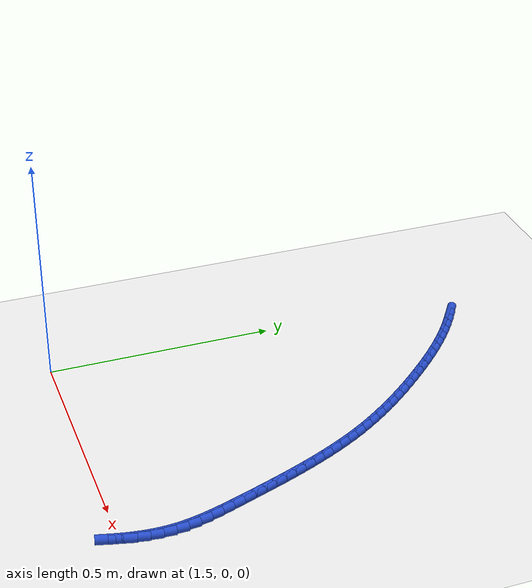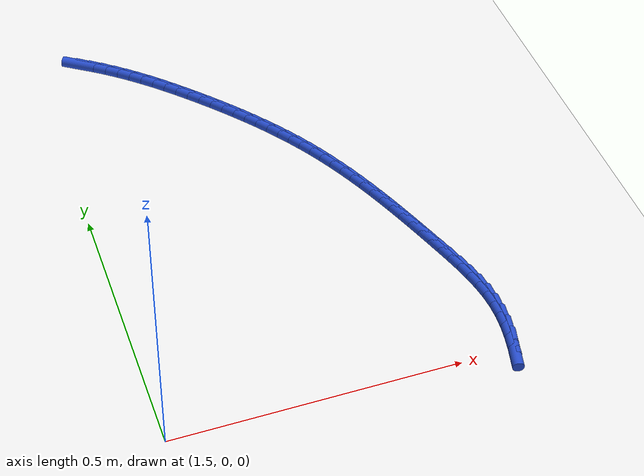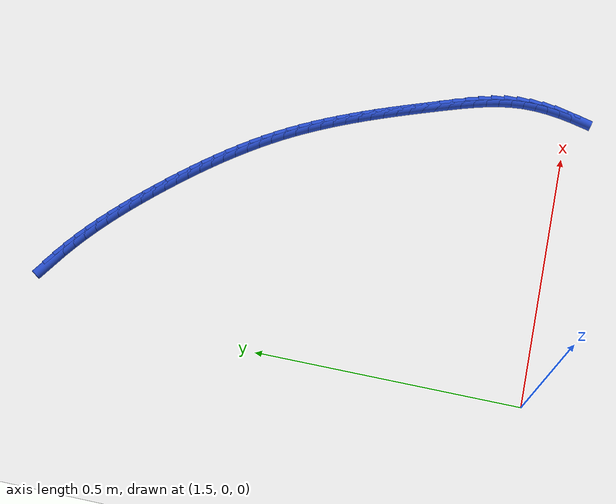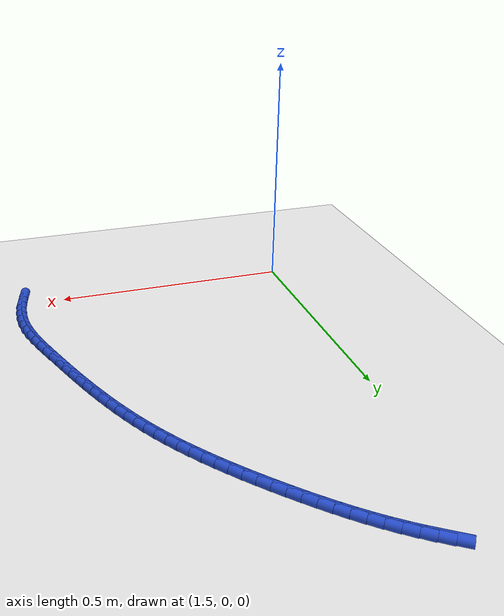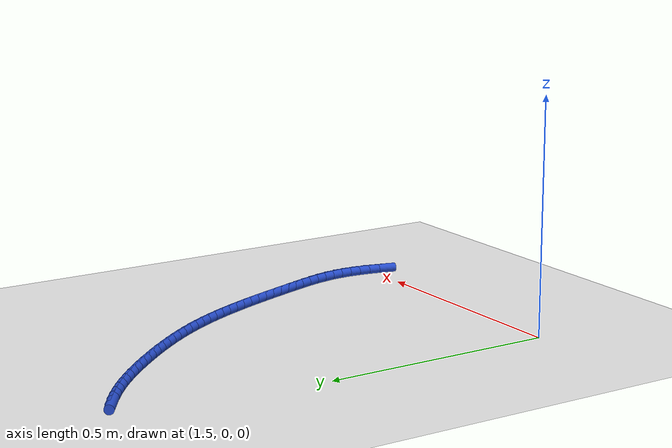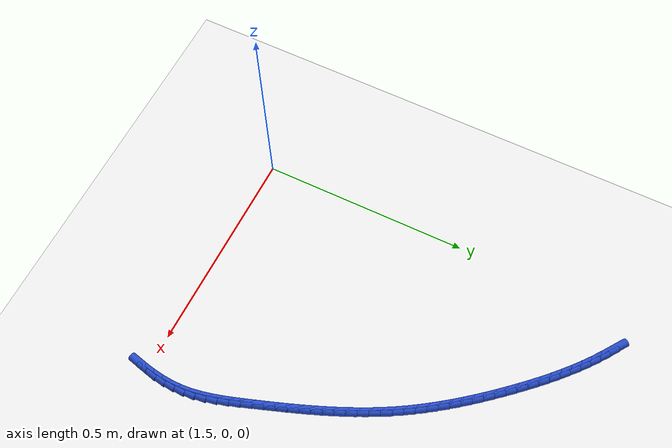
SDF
<sdf version="1.6">
 <world name="default">
  <model name="ground_plane">
   <static>1</static>
   <link name="link">
    <collision name="collision">
     <geometry><plane><normal>0 0 1</normal><size>100 100</size></plane></geometry>
     <surface><friction><ode><mu>100</mu><mu2>50</mu2></ode></friction></surface>
    </collision>
    <visual name="visual">
     <cast_shadows>0</cast_shadows>
     <geometry><plane><normal>0 0 1</normal><size>100 100</size></plane></geometry>
     <material>
      <script><uri>file://media/materials/scripts/gazebo.material</uri><name>Gazebo/WhiteGlow</name></script>
     </material>
    </visual>
   </link>
  </model>
  <model name="line">
   <link name="link_88">
    <pose>1.591298758432169 0.9157026229464191 0.01 0 1.57 -0.5947481080349755</pose>
    <collision name="collision">
     <geometry><cylinder><radius>0.01</radius><length>0.08</length></cylinder></geometry>
    </collision>
    <visual name="visual">
     <material>
      <script><name>Gazebo/Blue</name><uri>file://media/materials/scripts/gazebo.material</uri></script>
     </material>
     <geometry><cylinder><radius>0.01</radius><length>0.08</length></cylinder></geometry>
    </visual>
   </link>
   <link name="link_89">
    <pose>1.612320503462889 0.9014823723536416 0.01 0 1.57 -0.6296295920665281</pose>
    <collision name="collision">
     <geometry><cylinder><radius>0.01</radius><length>0.08</length></cylinder></geometry>
    </collision>
    <visual name="visual">
     <material>
      <script><name>Gazebo/Blue</name><uri>file://media/materials/scripts/gazebo.material</uri></script>
     </material>
     <geometry><cylinder><radius>0.01</radius><length>0.08</length></cylinder></geometry>
    </visual>
   </link>
   <link name="link_90">
    <pose>1.632821633740413 0.8865463238608685 0.01 0 1.57 -0.6633139800804171</pose>
    <collision name="collision">
     <geometry><cylinder><radius>0.01</radius><length>0.08</length></cylinder></geometry>
    </collision>
    <visual name="visual">
     <material>
      <script><name>Gazebo/Blue</name><uri>file://media/materials/scripts/gazebo.material</uri></script>
     </material>
     <geometry><cylinder><radius>0.01</radius><length>0.08</length></cylinder></geometry>
    </visual>
   </link>
   <link name="link_91">
    <pose>1.6528098466132486 0.8709269597770241 0.01 0 1.57 -0.6944272171513347</pose>
    <collision name="collision">
     <geometry><cylinder><radius>0.01</radius><length>0.08</length></cylinder></geometry>
    </collision>
    <visual name="visual">
     <material>
      <script><name>Gazebo/Blue</name><uri>file://media/materials/scripts/gazebo.material</uri></script>
     </material>
     <geometry><cylinder><radius>0.01</radius><length>0.08</length></cylinder></geometry>
    </visual>
   </link>
   <link name="link_92">
    <pose>1.6723182796564022 0.8546802119308494 0.01 0 1.57 -0.7229050044618905</pose>
    <collision name="collision">
     <geometry><cylinder><radius>0.01</radius><length>0.08</length></cylinder></geometry>
    </collision>
    <visual name="visual">
     <material>
      <script><name>Gazebo/Blue</name><uri>file://media/materials/scripts/gazebo.material</uri></script>
     </material>
     <geometry><cylinder><radius>0.01</radius><length>0.08</length></cylinder></geometry>
    </visual>
   </link>
   <link name="link_93">
    <pose>1.691380898089898 0.8378627750325891 0.01 0 1.57 -0.7487481803617233</pose>
    <collision name="collision">
     <geometry><cylinder><radius>0.01</radius><length>0.08</length></cylinder></geometry>
    </collision>
    <visual name="visual">
     <material>
      <script><name>Gazebo/Blue</name><uri>file://media/materials/scripts/gazebo.material</uri></script>
     </material>
     <geometry><cylinder><radius>0.01</radius><length>0.08</length></cylinder></geometry>
    </visual>
   </link>
   <link name="link_94">
    <pose>1.7100316671337612 0.8205313437924869 0.01 0 1.57 -0.7719732264941318</pose>
    <collision name="collision">
     <geometry><cylinder><radius>0.01</radius><length>0.08</length></cylinder></geometry>
    </collision>
    <visual name="visual">
     <material>
      <script><name>Gazebo/Blue</name><uri>file://media/materials/scripts/gazebo.material</uri></script>
     </material>
     <geometry><cylinder><radius>0.01</radius><length>0.08</length></cylinder></geometry>
    </visual>
   </link>
   <link name="link_95">
    <pose>1.7283045520080162 0.8027426129207885 0.01 0 1.57 -0.7926068455871619</pose>
    <collision name="collision">
     <geometry><cylinder><radius>0.01</radius><length>0.08</length></cylinder></geometry>
    </collision>
    <visual name="visual">
     <material>
      <script><name>Gazebo/Blue</name><uri>file://media/materials/scripts/gazebo.material</uri></script>
     </material>
     <geometry><cylinder><radius>0.01</radius><length>0.08</length></cylinder></geometry>
    </visual>
   </link>
   <link name="link_96">
    <pose>1.7462335179326873 0.7845532771277379 0.01 0 1.57 -0.8106812036204364</pose>
    <collision name="collision">
     <geometry><cylinder><radius>0.01</radius><length>0.08</length></cylinder></geometry>
    </collision>
    <visual name="visual">
     <material>
      <script><name>Gazebo/Blue</name><uri>file://media/materials/scripts/gazebo.material</uri></script>
     </material>
     <geometry><cylinder><radius>0.01</radius><length>0.08</length></cylinder></geometry>
    </visual>
   </link>
   <link name="link_97">
    <pose>1.7638525301277999 0.7660200311235797 0.01 0 1.57 -0.8262302536946817</pose>
    <collision name="collision">
     <geometry><cylinder><radius>0.01</radius><length>0.08</length></cylinder></geometry>
    </collision>
    <visual name="visual">
     <material>
      <script><name>Gazebo/Blue</name><uri>file://media/materials/scripts/gazebo.material</uri></script>
     </material>
     <geometry><cylinder><radius>0.01</radius><length>0.08</length></cylinder></geometry>
    </visual>
   </link>
   <link name="link_98">
    <pose>1.7811955464429823 0.7471995629546028 0.01 0 1.57 -0.8401036289439704</pose>
    <collision name="collision">
     <geometry><cylinder><radius>0.01</radius><length>0.08</length></cylinder></geometry>
    </collision>
    <visual name="visual">
     <material>
      <script><name>Gazebo/Blue</name><uri>file://media/materials/scripts/gazebo.material</uri></script>
     </material>
     <geometry><cylinder><radius>0.01</radius><length>0.08</length></cylinder></geometry>
    </visual>
   </link>
   <link name="link_99">
    <pose>1.798280989914206 0.7281345148375369 0.01 0 1.57 -0.8548725279354994</pose>
    <collision name="collision">
     <geometry><cylinder><radius>0.01</radius><length>0.08</length></cylinder></geometry>
    </collision>
    <visual name="visual">
     <material>
      <script><name>Gazebo/Blue</name><uri>file://media/materials/scripts/gazebo.material</uri></script>
     </material>
     <geometry><cylinder><radius>0.01</radius><length>0.08</length></cylinder></geometry>
    </visual>
   </link>
   <link name="link_100">
    <pose>1.8150789800584497 0.7088238552760161 0.01 0 1.57 -0.8710571703144583</pose>
    <collision name="collision">
     <geometry><cylinder><radius>0.01</radius><length>0.08</length></cylinder></geometry>
    </collision>
    <visual name="visual">
     <material>
      <script><name>Gazebo/Blue</name><uri>file://media/materials/scripts/gazebo.material</uri></script>
     </material>
     <geometry><cylinder><radius>0.01</radius><length>0.08</length></cylinder></geometry>
    </visual>
   </link>
   <link name="link_101">
    <pose>1.8315502752850388 0.6892580889114422 0.01 0 1.57 -0.8886868358068836</pose>
    <collision name="collision">
     <geometry><cylinder><radius>0.01</radius><length>0.08</length></cylinder></geometry>
    </collision>
    <visual name="visual">
     <material>
      <script><name>Gazebo/Blue</name><uri>file://media/materials/scripts/gazebo.material</uri></script>
     </material>
     <geometry><cylinder><radius>0.01</radius><length>0.08</length></cylinder></geometry>
    </visual>
   </link>
   <link name="link_102">
    <pose>1.8476556340033 0.6694277203852184 0.01 0 1.57 -0.9077920808704782</pose>
    <collision name="collision">
     <geometry><cylinder><radius>0.01</radius><length>0.08</length></cylinder></geometry>
    </collision>
    <visual name="visual">
     <material>
      <script><name>Gazebo/Blue</name><uri>file://media/materials/scripts/gazebo.material</uri></script>
     </material>
     <geometry><cylinder><radius>0.01</radius><length>0.08</length></cylinder></geometry>
    </visual>
   </link>
   <link name="link_103">
    <pose>1.8633558146225577 0.6493232543387474 0.01 0 1.57 -0.9284037126102299</pose>
    <collision name="collision">
     <geometry><cylinder><radius>0.01</radius><length>0.08</length></cylinder></geometry>
    </collision>
    <visual name="visual">
     <material>
      <script><name>Gazebo/Blue</name><uri>file://media/materials/scripts/gazebo.material</uri></script>
     </material>
     <geometry><cylinder><radius>0.01</radius><length>0.08</length></cylinder></geometry>
    </visual>
   </link>
   <link name="link_104">
    <pose>1.8786115755521382 0.628935195413432 0.01 0 1.57 -0.9505515898226059</pose>
    <collision name="collision">
     <geometry><cylinder><radius>0.01</radius><length>0.08</length></cylinder></geometry>
    </collision>
    <visual name="visual">
     <material>
      <script><name>Gazebo/Blue</name><uri>file://media/materials/scripts/gazebo.material</uri></script>
     </material>
     <geometry><cylinder><radius>0.01</radius><length>0.08</length></cylinder></geometry>
    </visual>
   </link>
   <link name="link_105">
    <pose>1.893383675201367 0.6082540482506749 0.01 0 1.57 -0.9742632319752085</pose>
    <collision name="collision">
     <geometry><cylinder><radius>0.01</radius><length>0.08</length></cylinder></geometry>
    </collision>
    <visual name="visual">
     <material>
      <script><name>Gazebo/Blue</name><uri>file://media/materials/scripts/gazebo.material</uri></script>
     </material>
     <geometry><cylinder><radius>0.01</radius><length>0.08</length></cylinder></geometry>
    </visual>
   </link>
   <link name="link_106">
    <pose>1.9076328719795697 0.5872703174918786 0.01 0 1.57 -0.9995622232377048</pose>
    <collision name="collision">
     <geometry><cylinder><radius>0.01</radius><length>0.08</length></cylinder></geometry>
    </collision>
    <visual name="visual">
     <material>
      <script><name>Gazebo/Blue</name><uri>file://media/materials/scripts/gazebo.material</uri></script>
     </material>
     <geometry><cylinder><radius>0.01</radius><length>0.08</length></cylinder></geometry>
    </visual>
   </link>
   <link name="link_107">
    <pose>1.9213199242960723 0.565974507778446 0.01 0 1.57 -1.0264625704970163</pose>
    <collision name="collision">
     <geometry><cylinder><radius>0.01</radius><length>0.08</length></cylinder></geometry>
    </collision>
    <visual name="visual">
     <material>
      <script><name>Gazebo/Blue</name><uri>file://media/materials/scripts/gazebo.material</uri></script>
     </material>
     <geometry><cylinder><radius>0.01</radius><length>0.08</length></cylinder></geometry>
    </visual>
   </link>
   <link name="link_108">
    <pose>1.9344056854648213 0.544357154259076 0.01 0 1.57 -1.0540331279135424</pose>
    <collision name="collision">
     <geometry><cylinder><radius>0.01</radius><length>0.08</length></cylinder></geometry>
    </collision>
    <visual name="visual">
     <material>
      <script><name>Gazebo/Blue</name><uri>file://media/materials/scripts/gazebo.material</uri></script>
     </material>
     <geometry><cylinder><radius>0.01</radius><length>0.08</length></cylinder></geometry>
    </visual>
   </link>
   <link name="link_109">
    <pose>1.9468741032157666 0.5224162158324868 0.01 0 1.57 -1.080080346717666</pose>
    <collision name="collision">
     <geometry><cylinder><radius>0.01</radius><length>0.08</length></cylinder></geometry>
    </collision>
    <visual name="visual">
     <material>
      <script><name>Gazebo/Blue</name><uri>file://media/materials/scripts/gazebo.material</uri></script>
     </material>
     <geometry><cylinder><radius>0.01</radius><length>0.08</length></cylinder></geometry>
    </visual>
   </link>
   <link name="link_110">
    <pose>1.9587621955929244 0.5001667109647397 0.01 0 1.57 -1.1042469598481657</pose>
    <collision name="collision">
     <geometry><cylinder><radius>0.01</radius><length>0.08</length></cylinder></geometry>
    </collision>
    <visual name="visual">
     <material>
      <script><name>Gazebo/Blue</name><uri>file://media/materials/scripts/gazebo.material</uri></script>
     </material>
     <geometry><cylinder><radius>0.01</radius><length>0.08</length></cylinder></geometry>
    </visual>
   </link>
   <link name="link_111">
    <pose>1.970114406892143 0.4776260453066259 0.01 0 1.57 -1.1264927233145696</pose>
    <collision name="collision">
     <geometry><cylinder><radius>0.01</radius><length>0.08</length></cylinder></geometry>
    </collision>
    <visual name="visual">
     <material>
      <script><name>Gazebo/Blue</name><uri>file://media/materials/scripts/gazebo.material</uri></script>
     </material>
     <geometry><cylinder><radius>0.01</radius><length>0.08</length></cylinder></geometry>
    </visual>
   </link>
   <link name="link_112">
    <pose>1.9809751814092749 0.45481162450893614 0.01 0 1.57 -1.1467918649457165</pose>
    <collision name="collision">
     <geometry><cylinder><radius>0.01</radius><length>0.08</length></cylinder></geometry>
    </collision>
    <visual name="visual">
     <material>
      <script><name>Gazebo/Blue</name><uri>file://media/materials/scripts/gazebo.material</uri></script>
     </material>
     <geometry><cylinder><radius>0.01</radius><length>0.08</length></cylinder></geometry>
    </visual>
   </link>
   <link name="link_113">
    <pose>1.991388963440171 0.4317408542224616 0.01 0 1.57 -1.1651307663658765</pose>
    <collision name="collision">
     <geometry><cylinder><radius>0.01</radius><length>0.08</length></cylinder></geometry>
    </collision>
    <visual name="visual">
     <material>
      <script><name>Gazebo/Blue</name><uri>file://media/materials/scripts/gazebo.material</uri></script>
     </material>
     <geometry><cylinder><radius>0.01</radius><length>0.08</length></cylinder></geometry>
    </visual>
   </link>
   <link name="link_114">
    <pose>2.001400197280681 0.4084311400979928 0.01 0 1.57 -1.1815056914236626</pose>
    <collision name="collision">
     <geometry><cylinder><radius>0.01</radius><length>0.08</length></cylinder></geometry>
    </collision>
    <visual name="visual">
     <material>
      <script><name>Gazebo/Blue</name><uri>file://media/materials/scripts/gazebo.material</uri></script>
     </material>
     <geometry><cylinder><radius>0.01</radius><length>0.08</length></cylinder></geometry>
    </visual>
   </link>
   <link name="link_115">
    <pose>2.0110533272266573 0.38489988778632067 0.01 0 1.57 -1.1959206505366025</pose>
    <collision name="collision">
     <geometry><cylinder><radius>0.01</radius><length>0.08</length></cylinder></geometry>
    </collision>
    <visual name="visual">
     <material>
      <script><name>Gazebo/Blue</name><uri>file://media/materials/scripts/gazebo.material</uri></script>
     </material>
     <geometry><cylinder><radius>0.01</radius><length>0.08</length></cylinder></geometry>
    </visual>
   </link>
   <link name="link_116">
    <pose>2.02039279757395 0.36116450293823665 0.01 0 1.57 -1.2083854618145518</pose>
    <collision name="collision">
     <geometry><cylinder><radius>0.01</radius><length>0.08</length></cylinder></geometry>
    </collision>
    <visual name="visual">
     <material>
      <script><name>Gazebo/Blue</name><uri>file://media/materials/scripts/gazebo.material</uri></script>
     </material>
     <geometry><cylinder><radius>0.01</radius><length>0.08</length></cylinder></geometry>
    </visual>
   </link>
   <link name="link_117">
    <pose>2.02946305261841 0.3372423912045314 0.01 0 1.57 -1.21891404559807</pose>
    <collision name="collision">
     <geometry><cylinder><radius>0.01</radius><length>0.08</length></cylinder></geometry>
    </collision>
    <visual name="visual">
     <material>
      <script><name>Gazebo/Blue</name><uri>file://media/materials/scripts/gazebo.material</uri></script>
     </material>
     <geometry><cylinder><radius>0.01</radius><length>0.08</length></cylinder></geometry>
    </visual>
   </link>
   <link name="link_118">
    <pose>2.0383085366558884 0.31315095823599554 0.01 0 1.57 -1.227522969973607</pose>
    <collision name="collision">
     <geometry><cylinder><radius>0.01</radius><length>0.08</length></cylinder></geometry>
    </collision>
    <visual name="visual">
     <material>
      <script><name>Gazebo/Blue</name><uri>file://media/materials/scripts/gazebo.material</uri></script>
     </material>
     <geometry><cylinder><radius>0.01</radius><length>0.08</length></cylinder></geometry>
    </visual>
   </link>
   <link name="link_119">
    <pose>2.0469736939822374 0.2889076096834207 0.01 0 1.57 -1.2342302508782594</pose>
    <collision name="collision">
     <geometry><cylinder><radius>0.01</radius><length>0.08</length></cylinder></geometry>
    </collision>
    <visual name="visual">
     <material>
      <script><name>Gazebo/Blue</name><uri>file://media/materials/scripts/gazebo.material</uri></script>
     </material>
     <geometry><cylinder><radius>0.01</radius><length>0.08</length></cylinder></geometry>
    </visual>
   </link>
   <link name="link_120">
    <pose>2.0555029688933057 0.26452975119759753 0.01 0 1.57 -1.2391011100173315</pose>
    <collision name="collision">
     <geometry><cylinder><radius>0.01</radius><length>0.08</length></cylinder></geometry>
    </collision>
    <visual name="visual">
     <material>
      <script><name>Gazebo/Blue</name><uri>file://media/materials/scripts/gazebo.material</uri></script>
     </material>
     <geometry><cylinder><radius>0.01</radius><length>0.08</length></cylinder></geometry>
    </visual>
   </link>
   <link name="link_121">
    <pose>2.063939514695292 0.24003482069045903 0.01 0 1.57 -1.2469201462958657</pose>
    <collision name="collision">
     <geometry><cylinder><radius>0.01</radius><length>0.08</length></cylinder></geometry>
    </collision>
    <visual name="visual">
     <material>
      <script><name>Gazebo/Blue</name><uri>file://media/materials/scripts/gazebo.material</uri></script>
     </material>
     <geometry><cylinder><radius>0.01</radius><length>0.08</length></cylinder></geometry>
    </visual>
   </link>
   <link name="link_122">
    <pose>2.072194726480168 0.2154435486413651 0.01 0 1.57 -1.266616069708563</pose>
    <collision name="collision">
     <geometry><cylinder><radius>0.01</radius><length>0.08</length></cylinder></geometry>
    </collision>
    <visual name="visual">
     <material>
      <script><name>Gazebo/Blue</name><uri>file://media/materials/scripts/gazebo.material</uri></script>
     </material>
     <geometry><cylinder><radius>0.01</radius><length>0.08</length></cylinder></geometry>
    </visual>
   </link>
   <link name="link_123">
    <pose>2.0799363035743346 0.19078275535674588 0.01 0 1.57 -1.2995723552325402</pose>
    <collision name="collision">
     <geometry><cylinder><radius>0.01</radius><length>0.08</length></cylinder></geometry>
    </collision>
    <visual name="visual">
     <material>
      <script><name>Gazebo/Blue</name><uri>file://media/materials/scripts/gazebo.material</uri></script>
     </material>
     <geometry><cylinder><radius>0.01</radius><length>0.08</length></cylinder></geometry>
    </visual>
   </link>
   <link name="link_124">
    <pose>2.086805576726251 0.1660799200797169 0.01 0 1.57 -1.3465231708343246</pose>
    <collision name="collision">
     <geometry><cylinder><radius>0.01</radius><length>0.08</length></cylinder></geometry>
    </collision>
    <visual name="visual">
     <material>
      <script><name>Gazebo/Blue</name><uri>file://media/materials/scripts/gazebo.material</uri></script>
     </material>
     <geometry><cylinder><radius>0.01</radius><length>0.08</length></cylinder></geometry>
    </visual>
   </link>
   <link name="link_125">
    <pose>2.0924438766843774 0.14136252205339256 0.01 0 1.57 -1.408356787225351</pose>
    <collision name="collision">
     <geometry><cylinder><radius>0.01</radius><length>0.08</length></cylinder></geometry>
    </collision>
    <visual name="visual">
     <material>
      <script><name>Gazebo/Blue</name><uri>file://media/materials/scripts/gazebo.material</uri></script>
     </material>
     <geometry><cylinder><radius>0.01</radius><length>0.08</length></cylinder></geometry>
    </visual>
   </link>
   <link name="link_126">
    <pose>2.0964925341971736 0.11665804052088737 0.01 0 1.57 -1.485655435699313</pose>
    <collision name="collision">
     <geometry><cylinder><radius>0.01</radius><length>0.08</length></cylinder></geometry>
    </collision>
    <visual name="visual">
     <material>
      <script><name>Gazebo/Blue</name><uri>file://media/materials/scripts/gazebo.material</uri></script>
     </material>
     <geometry><cylinder><radius>0.01</radius><length>0.08</length></cylinder></geometry>
    </visual>
   </link>
   <link name="link_127">
    <pose>2.0985975735523965 0.09199362355568974 0.01 0 1.57 -1.569355875318318</pose>
    <collision name="collision">
     <geometry><cylinder><radius>0.01</radius><length>0.08</length></cylinder></geometry>
    </collision>
    <visual name="visual">
     <material>
      <script><name>Gazebo/Blue</name><uri>file://media/materials/scripts/gazebo.material</uri></script>
     </material>
     <geometry><cylinder><radius>0.01</radius><length>0.08</length></cylinder></geometry>
    </visual>
   </link>
   <link name="link_128">
    <pose>2.0986330278301675 0.06738033124694358 0.01 0 1.57 1.4962835975913427</pose>
    <collision name="collision">
     <geometry><cylinder><radius>0.01</radius><length>0.08</length></cylinder></geometry>
    </collision>
    <visual name="visual">
     <material>
      <script><name>Gazebo/Blue</name><uri>file://media/materials/scripts/gazebo.material</uri></script>
     </material>
     <geometry><cylinder><radius>0.01</radius><length>0.08</length></cylinder></geometry>
    </visual>
   </link>
   <link name="link_129">
    <pose>2.096798549496881 0.04280624843124223 0.01 0 1.57 1.4299842357021388</pose>
    <collision name="collision">
     <geometry><cylinder><radius>0.01</radius><length>0.08</length></cylinder></geometry>
    </collision>
    <visual name="visual">
     <material>
      <script><name>Gazebo/Blue</name><uri>file://media/materials/scripts/gazebo.material</uri></script>
     </material>
     <geometry><cylinder><radius>0.01</radius><length>0.08</length></cylinder></geometry>
    </visual>
   </link>
   <link name="link_130">
    <pose>2.0933187871108485 0.018257696255581053 0.01 0 1.57 1.37367283093958</pose>
    <collision name="collision">
     <geometry><cylinder><radius>0.01</radius><length>0.08</length></cylinder></geometry>
    </collision>
    <visual name="visual">
     <material>
      <script><name>Gazebo/Blue</name><uri>file://media/materials/scripts/gazebo.material</uri></script>
     </material>
     <geometry><cylinder><radius>0.01</radius><length>0.08</length></cylinder></geometry>
    </visual>
   </link>
   <link name="link_131">
    <pose>2.0884183892303803 -0.0062790041330447275 0.01 0 1.57 1.3272851682485416</pose>
    <collision name="collision">
     <geometry><cylinder><radius>0.01</radius><length>0.08</length></cylinder></geometry>
    </collision>
    <visual name="visual">
     <material>
      <script><name>Gazebo/Blue</name><uri>file://media/materials/scripts/gazebo.material</uri></script>
     </material>
     <geometry><cylinder><radius>0.01</radius><length>0.08</length></cylinder></geometry>
    </visual>
   </link>
  </model>
 </world>
</sdf>
